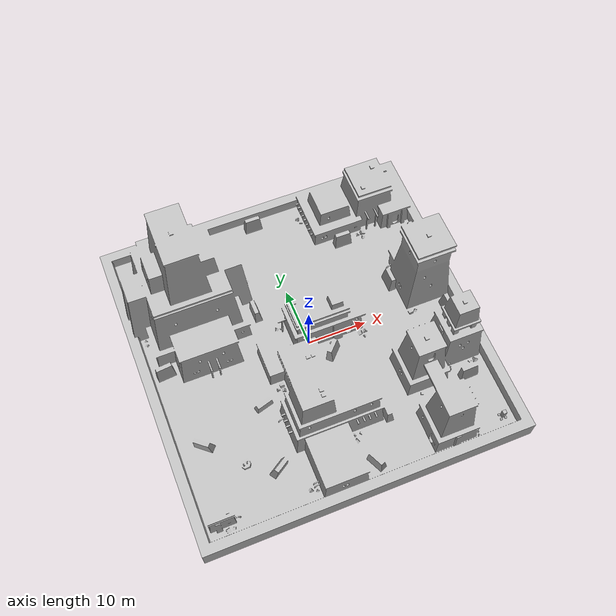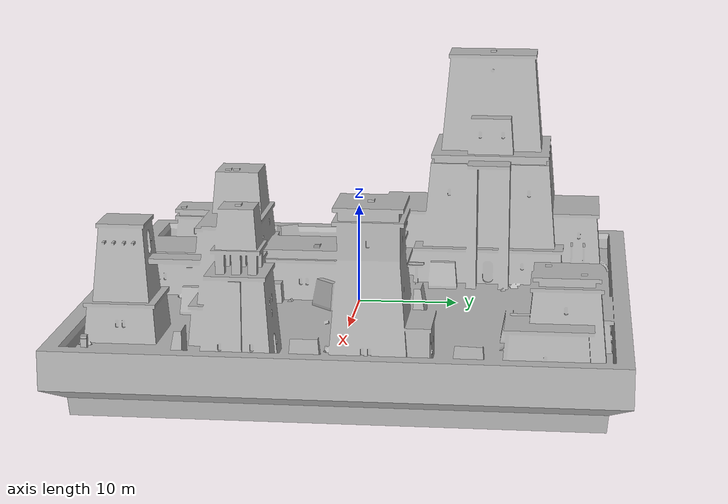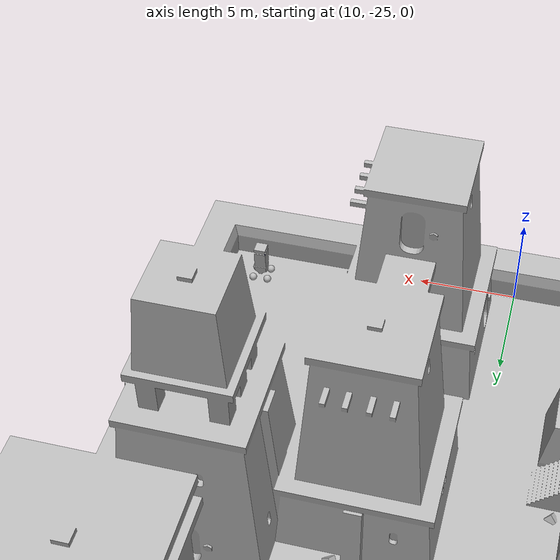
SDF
<sdf version="1.7">
 <world name="default">
  <light name="sun" type="directional">
   <pose>0 0 50 0 -0 0</pose>
   <diffuse>0.92 0.87 0.8 1</diffuse>
   <specular>0.2 0.2 0.2 1</specular>
   <attenuation>
    <range>1000</range>
    <constant>0.9</constant>
    <linear>0.01</linear>
    <quadratic>0.001</quadratic>
   </attenuation>
   <direction>-0.5 0.1 -0.9</direction>
   <spot><inner_angle>0</inner_angle><outer_angle>0</outer_angle><falloff>0</falloff></spot>
  </light>
  <gravity>0 0 -9.8</gravity>
  <magnetic_field>6e-06 2.3e-05 -4.2e-05</magnetic_field>
  <atmosphere type="adiabatic"/>
  <physics type="ode">
   <max_step_size>0.001</max_step_size>
   <real_time_factor>1</real_time_factor>
   <real_time_update_rate>1000</real_time_update_rate>
  </physics>
  <scene>
   <ambient>0.77 0.75 0.71 1</ambient>
   <background>0.7 0.7 0.7 1</background>
   <shadows>1</shadows>
   <grid>0</grid>
   <origin_visual>0</origin_visual>
   <sky><time>17</time><clouds><speed>4</speed></clouds></sky>
  </scene>
  <spherical_coordinates>
   <surface_model>EARTH_WGS84</surface_model>
   <latitude_deg>0</latitude_deg>
   <longitude_deg>0</longitude_deg>
   <elevation>0</elevation>
   <heading_deg>0</heading_deg>
  </spherical_coordinates>
  <model name="ozyland">
   <link name="link_1">
    <inertial>
     <mass>1</mass>
     <inertia>
      <ixx>0.166667</ixx>
      <ixy>0</ixy>
      <ixz>0</ixz>
      <iyy>0.166667</iyy>
      <iyz>0</iyz>
      <izz>0.166667</izz>
     </inertia>
    </inertial>
    <visual name="visual">
     <geometry><mesh><uri>model://ozyland/ozyland.dae</uri><scale>1 1 1</scale></mesh></geometry>
    </visual>
    <collision name="collision">
     <geometry><mesh><uri>model://ozyland/ozyland.dae</uri><scale>1 1 1</scale></mesh></geometry>
     <surface>
      <friction>
       <ode><mu>1</mu><mu2>1</mu2><fdir1>0 0 0</fdir1><slip1>0</slip1><slip2>0</slip2></ode>
       <torsional>
        <coefficient>1</coefficient>
        <patch_radius>0</patch_radius>
        <surface_radius>0</surface_radius>
        <use_patch_radius>1</use_patch_radius>
        <ode><slip>0</slip></ode>
       </torsional>
      </friction>
      <bounce><restitution_coefficient>0</restitution_coefficient><threshold>1e+06</threshold></bounce>
      <contact>
       <collide_without_contact>0</collide_without_contact>
       <collide_without_contact_bitmask>1</collide_without_contact_bitmask>
       <collide_bitmask>1</collide_bitmask>
       <ode>
        <soft_cfm>0</soft_cfm>
        <soft_erp>0.2</soft_erp>
        <kp>1e+13</kp>
        <kd>1</kd>
        <max_vel>0.01</max_vel>
        <min_depth>0</min_depth>
       </ode>
       <bullet>
        <split_impulse>1</split_impulse>
        <split_impulse_penetration_threshold>-0.01</split_impulse_penetration_threshold>
        <soft_cfm>0</soft_cfm>
        <soft_erp>0.2</soft_erp>
        <kp>1e+13</kp>
        <kd>1</kd>
       </bullet>
      </contact>
     </surface>
    </collision>
   </link>
   <static>1</static>
   <pose>0.216461 0.062172 0 0 -0 0</pose>
  </model>
  <include><uri>model://bereg</uri><pose>23.32 -23.17 0.28 0 0 2.374</pose></include>
 </world>
</sdf>

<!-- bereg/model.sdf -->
<sdf version='1.7'>
  <model name='bereg'>
    <pose>0 0 0 0 0 0</pose>

    <link name='base_link'>
      <pose>0 0 0 0 0 0</pose>
      <inertial>
        <mass>1.14395</mass>
        <inertia>
          <ixx>0.126164</ixx>
          <ixy>0</ixy>
          <ixz>0</ixz>
          <iyy>0.416519</iyy>
          <iyz>0</iyz>
          <izz>0.481014</izz>
        </inertia>
      </inertial>
      <visual name='visual'>
        <pose>0 0 0.3 0 0 1.5707</pose>
        <geometry>
          <mesh>
            <uri>model://bereg/body.dae</uri>
            <scale>1 1 1</scale>
          </mesh>
        </geometry>
        <transparency>0</transparency>
        <cast_shadows>1</cast_shadows>
      </visual>
      <collision name='collision'>
        <pose>0 0 1.18 0 0 0.785398</pose>
        <geometry>
          <box>
            <size>0.6 0.6 1.76</size>
          </box>
        </geometry>
      </collision>
    </link>

    <link name='left_wheel'>
      <pose>0 0.55 0.1 -1.5707 0 0</pose>
      <inertial>
        <mass>2</mass>
        <inertia>
          <ixx>0.145833</ixx>
          <ixy>0</ixy>
          <ixz>0</ixz>
          <iyy>0.145833</iyy>
          <iyz>0</iyz>
          <izz>0.125</izz>
        </inertia>
      </inertial>
      <visual name='visual'>
        <geometry>
          <mesh>
            <uri>model://bereg/wheel.dae</uri>
            <scale>1 1 1</scale>
          </mesh>
        </geometry>
      </visual>
      <collision name='collision'>
        <geometry>
          <sphere>
            <radius>0.2</radius>
          </sphere>
        </geometry>
        <surface>
          <friction>
            <ode>
              <mu>1</mu>
              <mu2>1</mu2>
              <slip1>0</slip1>
              <slip2>0</slip2>
            </ode>
          </friction>
          <contact>
            <ode>
              <soft_cfm>0</soft_cfm>
              <soft_erp>0.2</soft_erp>
              <kp>1e+13</kp>
              <kd>1</kd>
              <max_vel>0.01</max_vel>
              <min_depth>0.01</min_depth>
            </ode>
          </contact>
        </surface>
      </collision>
    </link>

    <link name='right_wheel'>
      <pose>0 -0.55 0.1 -1.5707 0 0</pose>
      <inertial>
        <mass>2</mass>
        <inertia>
          <ixx>0.145833</ixx>
          <ixy>0</ixy>
          <ixz>0</ixz>
          <iyy>0.145833</iyy>
          <iyz>0</iyz>
          <izz>0.125</izz>
        </inertia>
      </inertial>
      <visual name='visual'>
        <geometry>
          <mesh>
            <uri>model://bereg/wheel.dae</uri>
            <scale>1 1 1</scale>
          </mesh>
        </geometry>
      </visual>
      <collision name='collision'>
        <geometry>
          <sphere>
            <radius>0.2</radius>
          </sphere>
        </geometry>
        <surface>
          <friction>
            <ode>
              <mu>1</mu>
              <mu2>1</mu2>
              <slip1>0</slip1>
              <slip2>0</slip2>
            </ode>
          </friction>
          <contact>
            <ode>
              <soft_cfm>0</soft_cfm>
              <soft_erp>0.2</soft_erp>
              <kp>1e+13</kp>
              <kd>1</kd>
              <max_vel>0.01</max_vel>
              <min_depth>0.01</min_depth>
            </ode>
          </contact>
        </surface>
      </collision>
    </link>

    <joint name='left_joint' type='revolute'>
      <parent>base_link</parent>
      <child>left_wheel</child>
      <axis>
        <xyz>0 0 1</xyz>
        <limit>
          <lower>-1.79769e+308</lower>
          <upper>1.79769e+308</upper>
        </limit>
      </axis>
    </joint>

    <joint name='right_joint' type='revolute'>
      <parent>base_link</parent>
      <child>right_wheel</child>
      <axis>
        <xyz>0 0 1</xyz>
        <limit>
          <lower>-1.79769e+308</lower>
          <upper>1.79769e+308</upper>
        </limit>
      </axis>
    </joint>

    <link name='caster_front'>
      <pose>0.55 0 0.105 0 0 -1.5707</pose>
      <inertial>
        <mass>1</mass>
        <inertia>
          <ixx>0.1</ixx>
          <ixy>0</ixy>
          <ixz>0</ixz>
          <iyy>0.1</iyy>
          <iyz>0</iyz>
          <izz>0.1</izz>
        </inertia>
      </inertial>
      <visual name='visual'>
        <geometry>
          <mesh>
            <uri>model://bereg/wheel.dae</uri>
            <scale>1 1 1</scale>
          </mesh>
        </geometry>
      </visual>
      <collision name='collision'>
        <geometry>
          <sphere>
            <radius>0.2</radius>
          </sphere>
        </geometry>
      </collision>
    </link>

    <link name='caster_rear'>
      <pose>-0.55 0 0.105 0 0 -1.5707</pose>
      <inertial>
        <mass>1</mass>
        <inertia>
          <ixx>0.1</ixx>
          <ixy>0</ixy>
          <ixz>0</ixz>
          <iyy>0.1</iyy>
          <iyz>0</iyz>
          <izz>0.1</izz>
        </inertia>
      </inertial>
      <visual name='visual'>
        <geometry>
          <mesh>
            <uri>model://bereg/wheel.dae</uri>
            <scale>1 1 1</scale>
          </mesh>
        </geometry>
      </visual>
      <collision name='collision'>
        <geometry>
          <sphere>
            <radius>0.2</radius>
          </sphere>
        </geometry>
      </collision>
    </link>

    <joint name='caster_front_joint' type='ball'>
      <parent>base_link</parent>
      <child>caster_front</child>
    </joint>

    <joint name='caster_rear_joint' type='ball'>
      <parent>base_link</parent>
      <child>caster_rear</child>
    </joint>

    <plugin name='diff_drive' filename='libgazebo_ros_diff_drive.so'>

      <!-- Number of wheel pairs -->

      <!-- wheels0 -->
      <left_joint>left_joint</left_joint>
      <right_joint>right_joint</right_joint>

      <!-- kinematics -->
      <wheel_separation>1.1</wheel_separation>

      <wheel_diameter>0.4</wheel_diameter>

      <!-- limits -->
      <max_wheel_torque>10</max_wheel_torque>
      <max_wheel_acceleration>1.0</max_wheel_acceleration>

      <!-- output -->
      <publish_odom>true</publish_odom>
      <publish_odom_tf>true</publish_odom_tf>
      <publish_wheel_tf>true</publish_wheel_tf>

      <odometry_frame>odom</odometry_frame>
      <robot_base_frame>base_link</robot_base_frame>

    </plugin>

     <link name="lidar">
       <pose>0 0 0.775 0 0 0</pose>
       <visual name='visual'>
         <geometry>
           <sphere>
             <radius>0.02</radius>
           </sphere>
         </geometry>
         <material>
           <ambient>0.1 0.1 0.1 1</ambient>
           <diffuse>0.1 0.1 0.2 1</diffuse>
         </material>
       </visual>

       <sensor name="lidar_sensor" type="gpu_ray">
         <always_on>true</always_on>
         <update_rate>10.0</update_rate>
         <visualize>false</visualize>
         <ray>
           <scan>
             <horizontal>
               <samples>300</samples>
               <resolution>1.0</resolution>
               <min_angle>-3.14159265</min_angle>
               <max_angle>3.14159265</max_angle>
             </horizontal>
           </scan>
           <range>
             <min>0.5</min>
             <max>8.0</max>
           </range>
           <noise>
             <type>gaussian</type>
             <mean>0.0</mean>
             <stddev>0.01</stddev>
           </noise>
         </ray>

         <plugin name="lidar_plugin" filename="libgazebo_ros_ray_sensor.so">
           <ros>
             <remapping>~/out:=scan</remapping>
           </ros>

           <output_type>sensor_msgs/LaserScan</output_type>
         </plugin>

       </sensor>

     </link>

     <joint name="lidar_joint" type="fixed">
       <parent>base_link</parent>
       <child>lidar</child>
     </joint>

     <link name="camera">
       <pose>0.42 0 1.75 0 0 0</pose>
       <visual name='visual'>
         <geometry>
           <sphere>
             <radius>0.04</radius>
         </sphere>
          </geometry>
          <material>
            <ambient>0.1 0.1 0.1 1</ambient>
            <diffuse>0.1 0.1 0.2 1</diffuse>
          </material>
       </visual>

       <sensor type="depth" name="camera">
         <update_rate>30</update_rate>
         <visualize>false</visualize>
         <camera>
           <horizontal_fov>1.57</horizontal_fov>
           <image>
             <width>640</width>
             <height>480</height>
             <format>B8G8R8</format>
           </image>
           <depth_camera>
           </depth_camera>
           <clip>
             <near>0.1</near>
             <far>300</far>
           </clip>
           <noise>
             <type>gaussian</type>
             <mean>0.0</mean>
             <stddev>0.007</stddev>
           </noise>
         </camera>

         <plugin name="camera_plugin" filename="libgazebo_ros_camera.so">

           <camera_name>camera</camera_name>
           <frame_name>camera</frame_name>

           <min_depth>0.4</min_depth>
           <max_depth>16</max_depth>

         </plugin>

       </sensor>

     </link>

     <joint name="camera_joint" type="fixed">
       <parent>base_link</parent>
       <child>camera</child>
     </joint>

  </model>
</sdf>
